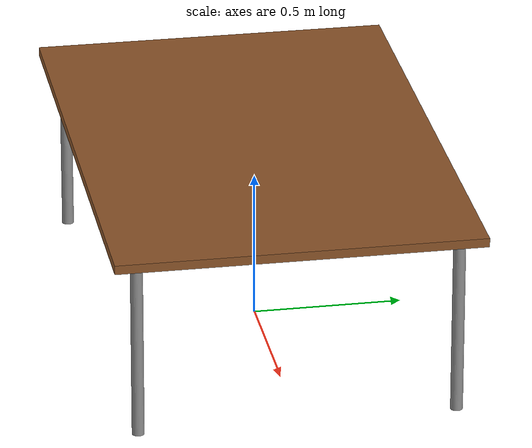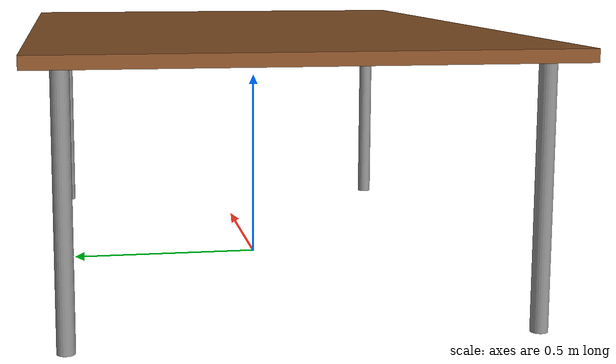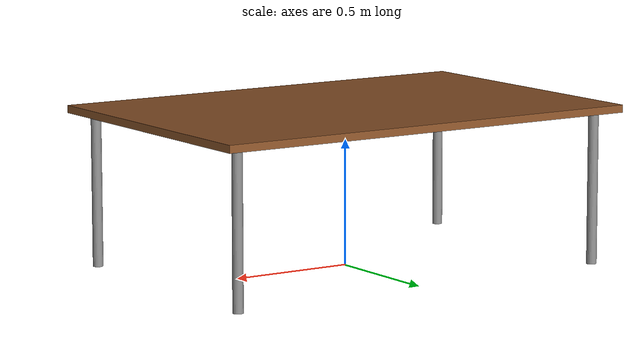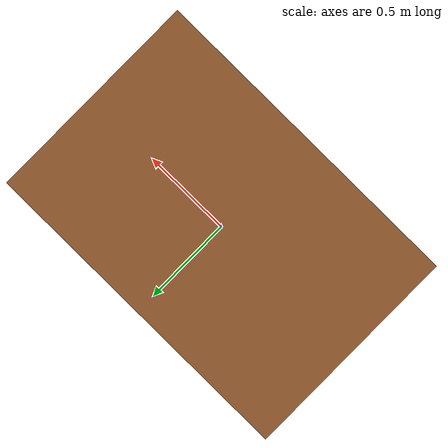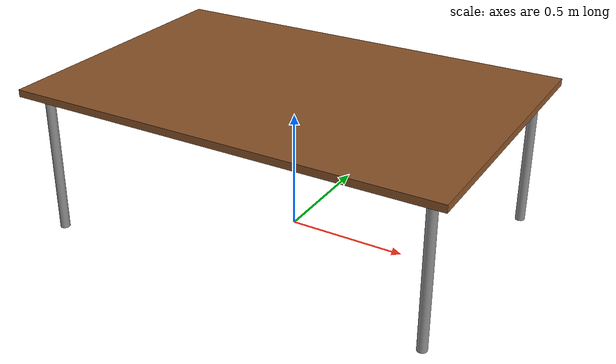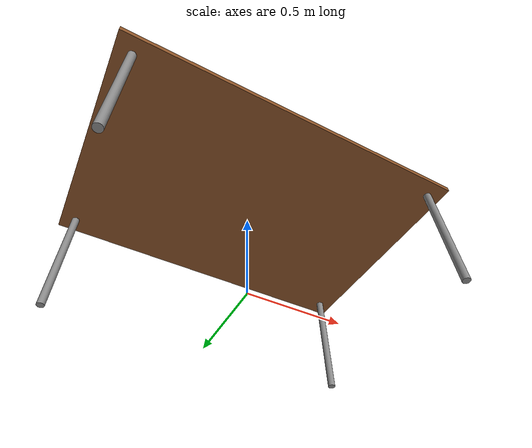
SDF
<?xml version="1.0"?>
<sdf version="1.9">
  <model name="arm_on_the_table">
    <static>true</static>
    <pose>0 0 0 0 0 0</pose>

    <link name="table_link">

      <!-- Mặt bàn -->
      <collision name="table_surface_collision">
        <pose>0 0 0.62 0 0 0</pose>
        <geometry>
          <box>
            <size>1.8 1.2 0.03</size>
          </box>
        </geometry>
        <surface>
          <friction>
            <ode>
              <mu>0.8</mu>
              <mu2>0.8</mu2>
            </ode>
          </friction>
        </surface>
      </collision>

      <visual name="table_surface_visual">
        <pose>0 0 0.62 0 0 0</pose>
        <geometry>
          <box>
            <size>1.8 1.2 0.03</size>
          </box>
        </geometry>
        <material>
          <ambient>0.42 0.25 0.12 1</ambient>
          <diffuse>0.55 0.33 0.16 1</diffuse>
          <specular>0.10 0.10 0.10 1</specular>
        </material>
      </visual>

      <!-- Chân bàn 1 -->
      <collision name="leg1_collision">
        <pose>0.82 0.52 0.3025 0 0 0</pose>
        <geometry>
          <cylinder>
            <radius>0.02</radius>
            <length>0.605</length>
          </cylinder>
        </geometry>
      </collision>
      <visual name="leg1_visual">
        <pose>0.82 0.52 0.3025 0 0 0</pose>
        <geometry>
          <cylinder>
            <radius>0.02</radius>
            <length>0.605</length>
          </cylinder>
        </geometry>
        <material>
          <ambient>0.50 0.50 0.50 1</ambient>
          <diffuse>0.55 0.55 0.55 1</diffuse>
          <specular>0.08 0.08 0.08 1</specular>
        </material>
      </visual>

      <!-- Chân bàn 2 -->
      <collision name="leg2_collision">
        <pose>0.82 -0.52 0.3025 0 0 0</pose>
        <geometry>
          <cylinder>
            <radius>0.02</radius>
            <length>0.605</length>
          </cylinder>
        </geometry>
      </collision>
      <visual name="leg2_visual">
        <pose>0.82 -0.52 0.3025 0 0 0</pose>
        <geometry>
          <cylinder>
            <radius>0.02</radius>
            <length>0.605</length>
          </cylinder>
        </geometry>
        <material>
          <ambient>0.50 0.50 0.50 1</ambient>
          <diffuse>0.55 0.55 0.55 1</diffuse>
          <specular>0.08 0.08 0.08 1</specular>
        </material>
      </visual>

      <!-- Chân bàn 3 -->
      <collision name="leg3_collision">
        <pose>-0.82 -0.52 0.3025 0 0 0</pose>
        <geometry>
          <cylinder>
            <radius>0.02</radius>
            <length>0.605</length>
          </cylinder>
        </geometry>
      </collision>
      <visual name="leg3_visual">
        <pose>-0.82 -0.52 0.3025 0 0 0</pose>
        <geometry>
          <cylinder>
            <radius>0.02</radius>
            <length>0.605</length>
          </cylinder>
        </geometry>
        <material>
          <ambient>0.50 0.50 0.50 1</ambient>
          <diffuse>0.55 0.55 0.55 1</diffuse>
          <specular>0.08 0.08 0.08 1</specular>
        </material>
      </visual>

      <!-- Chân bàn 4 -->
      <collision name="leg4_collision">
        <pose>-0.82 0.52 0.3025 0 0 0</pose>
        <geometry>
          <cylinder>
            <radius>0.02</radius>
            <length>0.605</length>
          </cylinder>
        </geometry>
      </collision>
      <visual name="leg4_visual">
        <pose>-0.82 0.52 0.3025 0 0 0</pose>
        <geometry>
          <cylinder>
            <radius>0.02</radius>
            <length>0.605</length>
          </cylinder>
        </geometry>
        <material>
          <ambient>0.50 0.50 0.50 1</ambient>
          <diffuse>0.55 0.55 0.55 1</diffuse>
          <specular>0.08 0.08 0.08 1</specular>
        </material>
      </visual>

    </link>
  </model>
</sdf>
